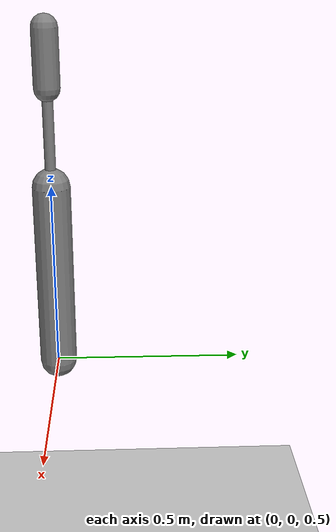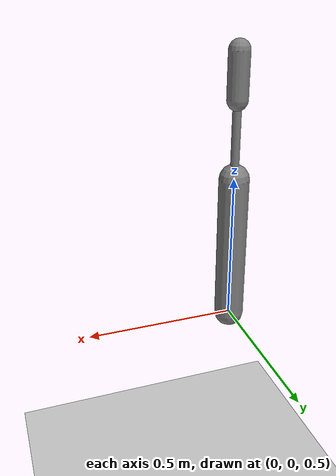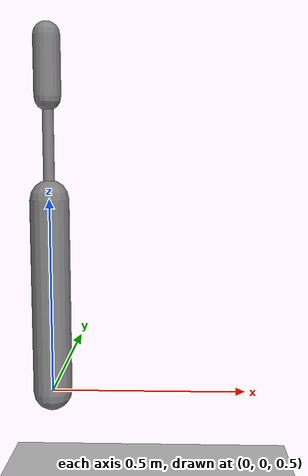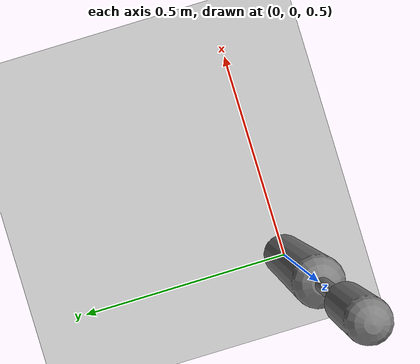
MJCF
<?xml version='1.0' encoding='UTF-8'?>
<mujoco model="RobotModel">
  <option gravity="0 0 -9.81" timestep="0.002" solver="CG" iterations="500" integrator="Euler"/>
  <worldbody>
    <geom name="Floor" type="plane" size="10 10 0.1" pos="0 0 0" rgba="0.8 0.8 0.8 1"/>
    <body name="Limb0" pos="0 0 0.5">
      <geom type="capsule" fromto="0 0 0 0 0 0.5" size="0.05" density="1000" contype="1" conaffinity="1"/>
      <body name="Limb0_08af4620" pos="0 0 0.5">
        <geom type="capsule" fromto="0 0 0 0 0 0.2557295883818998" size="0.014187333133827383" density="800" contype="1" conaffinity="1"/>
        <body name="Limb1_08af4620" pos="0 0 0.2557295883818998">
          <geom type="capsule" fromto="0 0 0 0 0 0.14944911981619594" size="0.03405095285355022" density="800" contype="1" conaffinity="1"/>
          <joint name="Joint_Limb0_08af4620_Limb1_08af4620_0" type="hinge" axis="0 1 0" range="-45 45"/>
        </body>
        <joint name="Joint_Limb0_Limb0_08af4620_0" type="hinge" axis="1 0 0" range="-60 60"/>
      </body>
    </body>
  </worldbody>
  <actuator>
    <position name="position_Actuator_Joint_Limb0_Limb0_08af4620_0" joint="Joint_Limb0_Limb0_08af4620_0" gear="1.0"/>
    <position name="position_Actuator_Joint_Limb0_08af4620_Limb1_08af4620_0" joint="Joint_Limb0_08af4620_Limb1_08af4620_0" gear="1.0"/>
  </actuator>
</mujoco>
